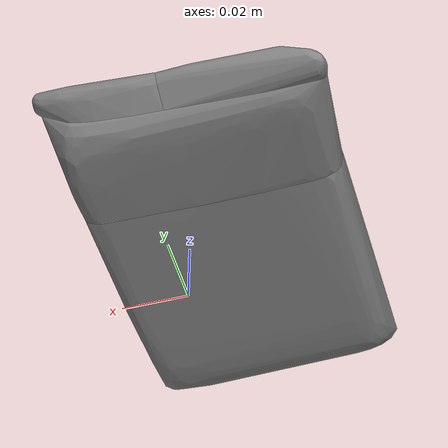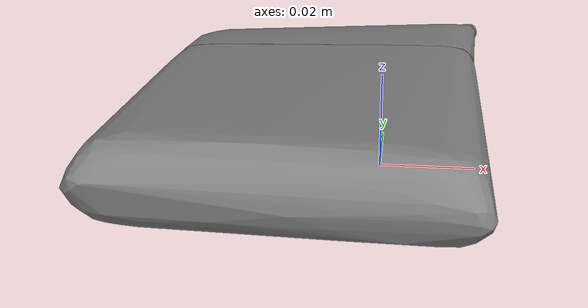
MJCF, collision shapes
<mujoco model="ycb_026_sponge">
  <compiler meshdir="meshes" texturedir="meshes" angle="radian"/>
  <default>
    <default class="visual"><geom contype="0" conaffinity="0" group="2" density="0"/></default>
    <default class="collision"><geom group="3"/></default>
  </default>
  <asset>
    <texture name="ycb_026_sponge_tex" type="2d" file="ycb_026_sponge_texture.png"/>
    <material name="ycb_026_sponge_mat" texture="ycb_026_sponge_tex" specular="0.2" shininess="0.3"/>
    <mesh name="ycb_026_sponge_visual" file="ycb_026_sponge_visual.obj"/>
    <mesh name="ycb_026_sponge_hull0" file="ycb_026_sponge_hull0.obj"/>
    <mesh name="ycb_026_sponge_hull1" file="ycb_026_sponge_hull1.obj"/>
    <mesh name="ycb_026_sponge_hull2" file="ycb_026_sponge_hull2.obj"/>
    <mesh name="ycb_026_sponge_hull3" file="ycb_026_sponge_hull3.obj"/>
  </asset>
  <worldbody>
    <body name="object" pos="0 0 0">
      <freejoint name="object_free"/>
      <geom type="mesh" mesh="ycb_026_sponge_visual" material="ycb_026_sponge_mat" class="visual"/>
      <geom type="mesh" mesh="ycb_026_sponge_hull0" class="collision"/>
      <geom type="mesh" mesh="ycb_026_sponge_hull1" class="collision"/>
      <geom type="mesh" mesh="ycb_026_sponge_hull2" class="collision"/>
      <geom type="mesh" mesh="ycb_026_sponge_hull3" class="collision"/>
    </body>
  </worldbody>
</mujoco>
